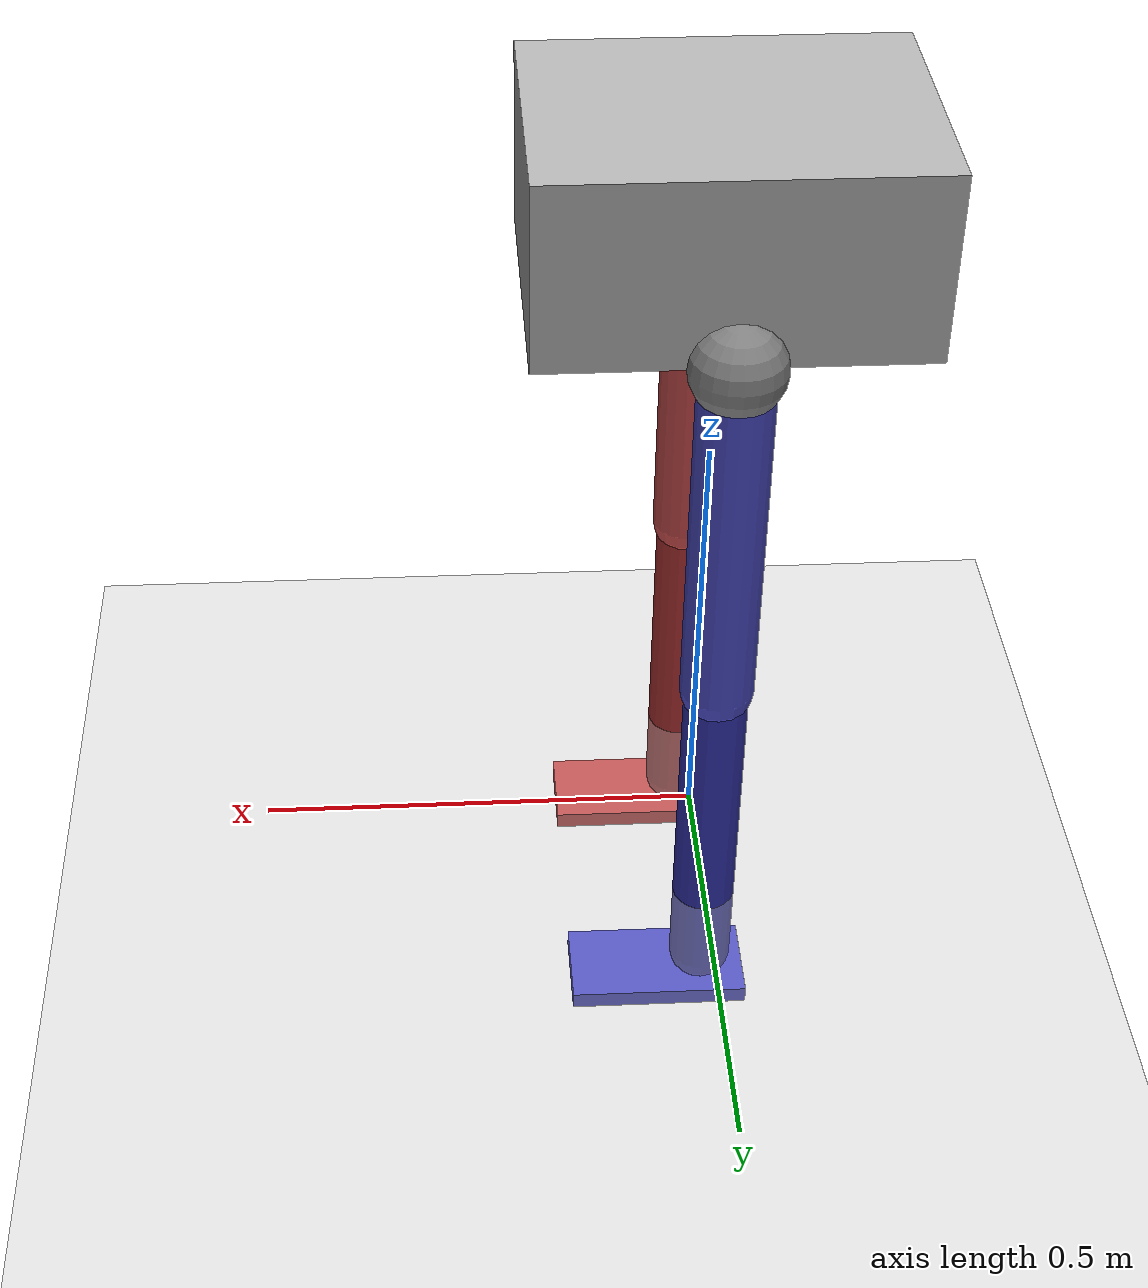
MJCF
<mujoco model="simple_biped">
  <compiler angle="radian" coordinate="local" inertiafromgeom="true"/>

  <option timestep="0.005" gravity="0 0 -9.81" iterations="50" solver="Newton">
    <flag warmstart="enable"/>
  </option>

  <default>
    <geom contype="1" conaffinity="1" friction="0.9 0.005 0.0001" rgba="0.7 0.7 0.7 1"/>
    <joint damping="0.5" armature="0.01" limited="true"/>
    <position ctrllimited="true"/>
  </default>

  <asset>
    <texture name="grid" type="2d" builtin="checker" width="512" height="512" rgb1="0.2 0.3 0.2" rgb2="0.3 0.4 0.3"/>
    <material name="grid" texture="grid" texrepeat="2 2" texuniform="true" reflectance="0.1"/>
    <material name="robot" rgba="0.6 0.6 0.6 1"/>
  </asset>

  <worldbody>
    <!-- Ground plane -->
    <geom name="floor" type="plane" size="5 5 0.1" material="grid" condim="3"/>
    <light directional="true" pos="0 0 3" dir="0 0 -1" diffuse="0.8 0.8 0.8"/>
    <light directional="true" pos="0 0 3" dir="0.5 0.5 -1" diffuse="0.4 0.4 0.4"/>

    <!-- Robot torso (main body) -->
    <body name="torso" pos="0 0 0.8">
      <freejoint name="root"/>
      <inertial pos="0 0 0" mass="30" diaginertia="0.3 0.3 0.1"/>
      <geom name="torso_geom" type="box" size="0.2 0.15 0.1" material="robot"/>

      <!-- Left leg chain -->
      <body name="left_hip" pos="0 0.15 -0.1">
        <inertial pos="0 0 -0.2" mass="4" diaginertia="0.05 0.05 0.01"/>
        <geom name="left_hip_geom" type="sphere" size="0.05" rgba="0.5 0.5 0.5 1"/>

        <!-- Hip: 3 DOF (yaw, roll, pitch) -->
        <joint name="left_hip_yaw" type="hinge" axis="0 0 1" range="-0.5 0.5" pos="0 0 0"/>
        <joint name="left_hip_roll" type="hinge" axis="1 0 0" range="-0.3 0.3" pos="0 0 0"/>
        <joint name="left_hip_pitch" type="hinge" axis="0 1 0" range="-1.5 1.5" pos="0 0 0"/>

        <geom name="left_thigh" type="capsule" fromto="0 0 0 0 0 -0.4" size="0.04" rgba="0.3 0.3 0.8 1"/>

        <body name="left_knee" pos="0 0 -0.4">
          <inertial pos="0 0 -0.2" mass="3" diaginertia="0.04 0.04 0.01"/>

          <!-- Knee: 1 DOF (pitch) -->
          <joint name="left_knee_pitch" type="hinge" axis="0 1 0" range="0 2.5" pos="0 0 0"/>

          <geom name="left_shin" type="capsule" fromto="0 0 0 0 0 -0.4" size="0.035" rgba="0.2 0.2 0.7 1"/>

          <body name="left_ankle" pos="0 0 -0.4">
            <inertial pos="0.05 0 -0.03" mass="1" diaginertia="0.01 0.01 0.005"/>

            <!-- Ankle: 2 DOF (pitch, roll) -->
            <joint name="left_ankle_pitch" type="hinge" axis="0 1 0" range="-0.7 0.7" pos="0 0 0"/>
            <joint name="left_ankle_roll" type="hinge" axis="1 0 0" range="-0.3 0.3" pos="0 0 0"/>

            <geom name="left_foot" type="box" pos="0.05 0 -0.03" size="0.1 0.05 0.01" rgba="0.2 0.2 0.8 1" friction="1.0 0.005 0.0001"/>

            <!-- Contact sites for stable ground interaction -->
            <site name="left_heel" pos="-0.05 0 -0.04" size="0.01" rgba="1 0 0 0.3"/>
            <site name="left_toe" pos="0.15 0 -0.04" size="0.01" rgba="1 0 0 0.3"/>
            <site name="left_inner" pos="0.05 0.05 -0.04" size="0.01" rgba="1 0 0 0.3"/>
            <site name="left_outer" pos="0.05 -0.05 -0.04" size="0.01" rgba="1 0 0 0.3"/>
            <site name="left_center" pos="0.05 0 -0.04" size="0.01" rgba="1 0 0 0.3"/>
          </body>
        </body>
      </body>

      <!-- Right leg chain (mirror of left) -->
      <body name="right_hip" pos="0 -0.15 -0.1">
        <inertial pos="0 0 -0.2" mass="4" diaginertia="0.05 0.05 0.01"/>
        <geom name="right_hip_geom" type="sphere" size="0.05" rgba="0.5 0.5 0.5 1"/>

        <!-- Hip: 3 DOF (yaw, roll, pitch) -->
        <joint name="right_hip_yaw" type="hinge" axis="0 0 1" range="-0.5 0.5" pos="0 0 0"/>
        <joint name="right_hip_roll" type="hinge" axis="1 0 0" range="-0.3 0.3" pos="0 0 0"/>
        <joint name="right_hip_pitch" type="hinge" axis="0 1 0" range="-1.5 1.5" pos="0 0 0"/>

        <geom name="right_thigh" type="capsule" fromto="0 0 0 0 0 -0.4" size="0.04" rgba="0.8 0.3 0.3 1"/>

        <body name="right_knee" pos="0 0 -0.4">
          <inertial pos="0 0 -0.2" mass="3" diaginertia="0.04 0.04 0.01"/>

          <!-- Knee: 1 DOF (pitch) -->
          <joint name="right_knee_pitch" type="hinge" axis="0 1 0" range="0 2.5" pos="0 0 0"/>

          <geom name="right_shin" type="capsule" fromto="0 0 0 0 0 -0.4" size="0.035" rgba="0.7 0.2 0.2 1"/>

          <body name="right_ankle" pos="0 0 -0.4">
            <inertial pos="0.05 0 -0.03" mass="1" diaginertia="0.01 0.01 0.005"/>

            <!-- Ankle: 2 DOF (pitch, roll) -->
            <joint name="right_ankle_pitch" type="hinge" axis="0 1 0" range="-0.7 0.7" pos="0 0 0"/>
            <joint name="right_ankle_roll" type="hinge" axis="1 0 0" range="-0.3 0.3" pos="0 0 0"/>

            <geom name="right_foot" type="box" pos="0.05 0 -0.03" size="0.1 0.05 0.01" rgba="0.8 0.2 0.2 1" friction="1.0 0.005 0.0001"/>

            <!-- Contact sites for stable ground interaction -->
            <site name="right_heel" pos="-0.05 0 -0.04" size="0.01" rgba="1 0 0 0.3"/>
            <site name="right_toe" pos="0.15 0 -0.04" size="0.01" rgba="1 0 0 0.3"/>
            <site name="right_inner" pos="0.05 0.05 -0.04" size="0.01" rgba="1 0 0 0.3"/>
            <site name="right_outer" pos="0.05 -0.05 -0.04" size="0.01" rgba="1 0 0 0.3"/>
            <site name="right_center" pos="0.05 0 -0.04" size="0.01" rgba="1 0 0 0.3"/>
          </body>
        </body>
      </body>
    </body>
  </worldbody>

  <actuator>
    <!-- Left leg actuators (position control with PD gains) -->
    <position name="left_hip_yaw_act" joint="left_hip_yaw" kp="200" kv="10" ctrlrange="-0.5 0.5"/>
    <position name="left_hip_roll_act" joint="left_hip_roll" kp="200" kv="10" ctrlrange="-0.3 0.3"/>
    <position name="left_hip_pitch_act" joint="left_hip_pitch" kp="200" kv="10" ctrlrange="-1.5 1.5"/>
    <position name="left_knee_pitch_act" joint="left_knee_pitch" kp="150" kv="10" ctrlrange="0 2.5"/>
    <position name="left_ankle_pitch_act" joint="left_ankle_pitch" kp="100" kv="8" ctrlrange="-0.7 0.7"/>
    <position name="left_ankle_roll_act" joint="left_ankle_roll" kp="100" kv="8" ctrlrange="-0.3 0.3"/>

    <!-- Right leg actuators (position control with PD gains) -->
    <position name="right_hip_yaw_act" joint="right_hip_yaw" kp="200" kv="10" ctrlrange="-0.5 0.5"/>
    <position name="right_hip_roll_act" joint="right_hip_roll" kp="200" kv="10" ctrlrange="-0.3 0.3"/>
    <position name="right_hip_pitch_act" joint="right_hip_pitch" kp="200" kv="10" ctrlrange="-1.5 1.5"/>
    <position name="right_knee_pitch_act" joint="right_knee_pitch" kp="150" kv="10" ctrlrange="0 2.5"/>
    <position name="right_ankle_pitch_act" joint="right_ankle_pitch" kp="100" kv="8" ctrlrange="-0.7 0.7"/>
    <position name="right_ankle_roll_act" joint="right_ankle_roll" kp="100" kv="8" ctrlrange="-0.3 0.3"/>
  </actuator>
</mujoco>
